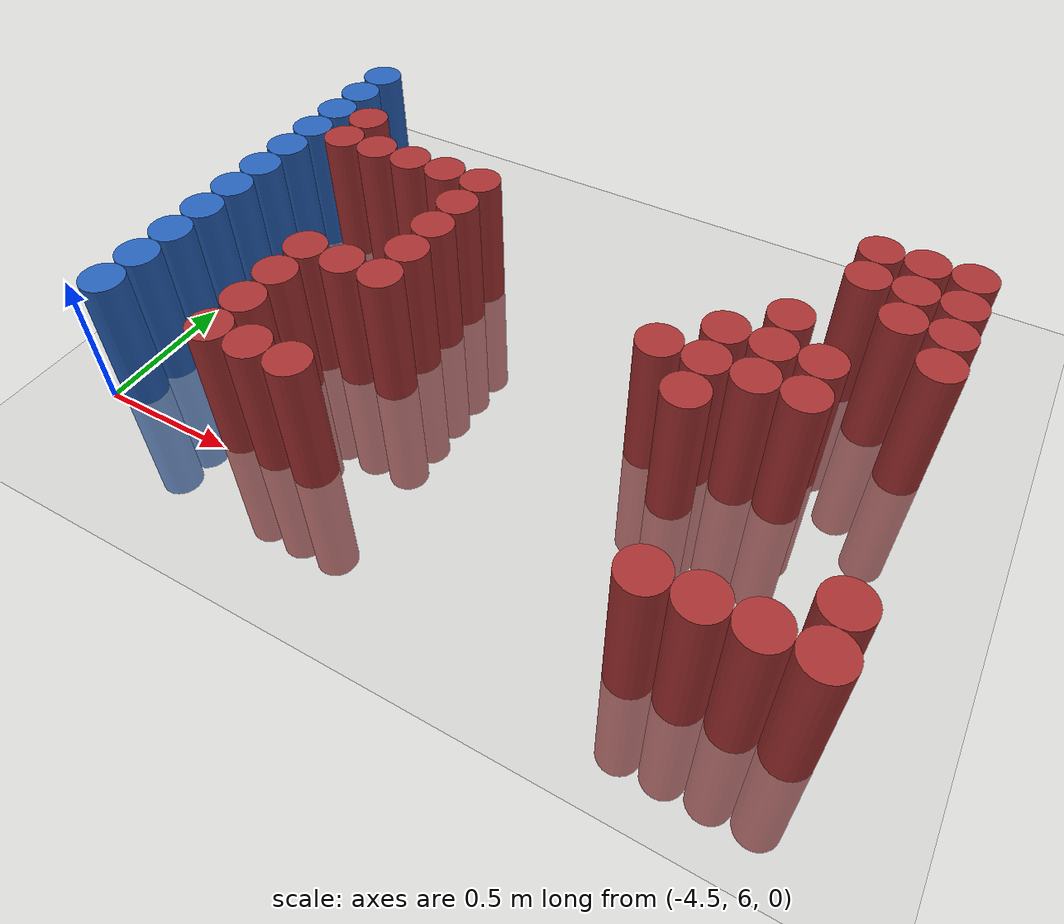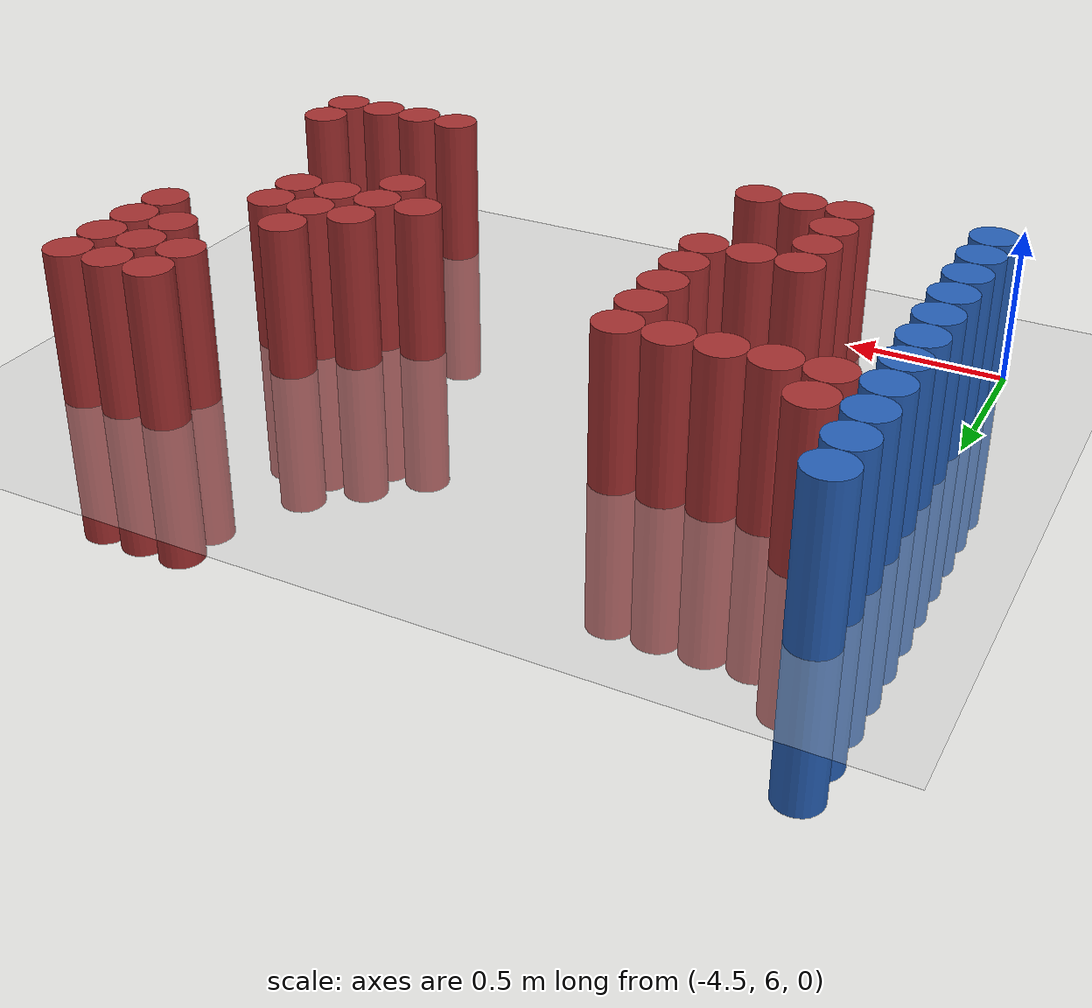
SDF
<sdf version="1.6">
 <world name="default">
  <model name="ground_plane">
   <static>1</static>
   <link name="link">
    <collision name="collision">
     <geometry><plane><normal>0 0 1</normal><size>100 100</size></plane></geometry>
     <surface><friction><ode><mu>100</mu><mu2>50</mu2></ode></friction></surface>
    </collision>
    <visual name="visual">
     <cast_shadows>0</cast_shadows>
     <geometry><plane><normal>0 0 1</normal><size>100 100</size></plane></geometry>
     <material>
      <script><uri>file://media/materials/scripts/gazebo.material</uri><name>Gazebo/Grey</name></script>
     </material>
    </visual>
   </link>
  </model>
  <model name="unit_cylinder_102">
   <static>1</static>
   <pose>-4.425000 6.075000 0.000000 0.000000 0.000000 0.000000</pose>
   <link name="link">
    <inertial>
     <mass>1</mass>
     <inertia><ixx>0.145833</ixx><ixy>0</ixy><ixz>0</ixz><iyy>0.145833</iyy><iyz>0</iyz><izz>0.125</izz></inertia>
    </inertial>
    <collision name="collision">
     <geometry><cylinder><radius>0.075000</radius><length>1</length></cylinder></geometry>
    </collision>
    <visual name="visual">
     <geometry><cylinder><radius>0.075000</radius><length>1</length></cylinder></geometry>
     <material>
      <ambient>0.152000 0.379000 0.720000 1</ambient>
      <diffuse>0.152000 0.379000 0.720000 1</diffuse>
     </material>
     <material>
      <script><name>Gazebo/Grey</name><uri>file://media/materials/scripts/gazebo.material</uri></script>
     </material>
    </visual>
   </link>
  </model>
  <model name="unit_cylinder_103">
   <static>1</static>
   <pose>-4.425000 6.225000 0.000000 0.000000 0.000000 0.000000</pose>
   <link name="link">
    <inertial>
     <mass>1</mass>
     <inertia><ixx>0.145833</ixx><ixy>0</ixy><ixz>0</ixz><iyy>0.145833</iyy><iyz>0</iyz><izz>0.125</izz></inertia>
    </inertial>
    <collision name="collision">
     <geometry><cylinder><radius>0.075000</radius><length>1</length></cylinder></geometry>
    </collision>
    <visual name="visual">
     <geometry><cylinder><radius>0.075000</radius><length>1</length></cylinder></geometry>
     <material>
      <ambient>0.152000 0.379000 0.720000 1</ambient>
      <diffuse>0.152000 0.379000 0.720000 1</diffuse>
     </material>
     <material>
      <script><name>Gazebo/Grey</name><uri>file://media/materials/scripts/gazebo.material</uri></script>
     </material>
    </visual>
   </link>
  </model>
  <model name="unit_cylinder_104">
   <static>1</static>
   <pose>-4.425000 6.375000 0.000000 0.000000 0.000000 0.000000</pose>
   <link name="link">
    <inertial>
     <mass>1</mass>
     <inertia><ixx>0.145833</ixx><ixy>0</ixy><ixz>0</ixz><iyy>0.145833</iyy><iyz>0</iyz><izz>0.125</izz></inertia>
    </inertial>
    <collision name="collision">
     <geometry><cylinder><radius>0.075000</radius><length>1</length></cylinder></geometry>
    </collision>
    <visual name="visual">
     <geometry><cylinder><radius>0.075000</radius><length>1</length></cylinder></geometry>
     <material>
      <ambient>0.152000 0.379000 0.720000 1</ambient>
      <diffuse>0.152000 0.379000 0.720000 1</diffuse>
     </material>
     <material>
      <script><name>Gazebo/Grey</name><uri>file://media/materials/scripts/gazebo.material</uri></script>
     </material>
    </visual>
   </link>
  </model>
  <model name="unit_cylinder_105">
   <static>1</static>
   <pose>-4.425000 6.525000 0.000000 0.000000 0.000000 0.000000</pose>
   <link name="link">
    <inertial>
     <mass>1</mass>
     <inertia><ixx>0.145833</ixx><ixy>0</ixy><ixz>0</ixz><iyy>0.145833</iyy><iyz>0</iyz><izz>0.125</izz></inertia>
    </inertial>
    <collision name="collision">
     <geometry><cylinder><radius>0.075000</radius><length>1</length></cylinder></geometry>
    </collision>
    <visual name="visual">
     <geometry><cylinder><radius>0.075000</radius><length>1</length></cylinder></geometry>
     <material>
      <ambient>0.152000 0.379000 0.720000 1</ambient>
      <diffuse>0.152000 0.379000 0.720000 1</diffuse>
     </material>
     <material>
      <script><name>Gazebo/Grey</name><uri>file://media/materials/scripts/gazebo.material</uri></script>
     </material>
    </visual>
   </link>
  </model>
  <model name="unit_cylinder_106">
   <static>1</static>
   <pose>-4.425000 6.675000 0.000000 0.000000 0.000000 0.000000</pose>
   <link name="link">
    <inertial>
     <mass>1</mass>
     <inertia><ixx>0.145833</ixx><ixy>0</ixy><ixz>0</ixz><iyy>0.145833</iyy><iyz>0</iyz><izz>0.125</izz></inertia>
    </inertial>
    <collision name="collision">
     <geometry><cylinder><radius>0.075000</radius><length>1</length></cylinder></geometry>
    </collision>
    <visual name="visual">
     <geometry><cylinder><radius>0.075000</radius><length>1</length></cylinder></geometry>
     <material>
      <ambient>0.152000 0.379000 0.720000 1</ambient>
      <diffuse>0.152000 0.379000 0.720000 1</diffuse>
     </material>
     <material>
      <script><name>Gazebo/Grey</name><uri>file://media/materials/scripts/gazebo.material</uri></script>
     </material>
    </visual>
   </link>
  </model>
  <model name="unit_cylinder_107">
   <static>1</static>
   <pose>-4.425000 6.825000 0.000000 0.000000 0.000000 0.000000</pose>
   <link name="link">
    <inertial>
     <mass>1</mass>
     <inertia><ixx>0.145833</ixx><ixy>0</ixy><ixz>0</ixz><iyy>0.145833</iyy><iyz>0</iyz><izz>0.125</izz></inertia>
    </inertial>
    <collision name="collision">
     <geometry><cylinder><radius>0.075000</radius><length>1</length></cylinder></geometry>
    </collision>
    <visual name="visual">
     <geometry><cylinder><radius>0.075000</radius><length>1</length></cylinder></geometry>
     <material>
      <ambient>0.152000 0.379000 0.720000 1</ambient>
      <diffuse>0.152000 0.379000 0.720000 1</diffuse>
     </material>
     <material>
      <script><name>Gazebo/Grey</name><uri>file://media/materials/scripts/gazebo.material</uri></script>
     </material>
    </visual>
   </link>
  </model>
  <model name="unit_cylinder_108">
   <static>1</static>
   <pose>-4.425000 6.975000 0.000000 0.000000 0.000000 0.000000</pose>
   <link name="link">
    <inertial>
     <mass>1</mass>
     <inertia><ixx>0.145833</ixx><ixy>0</ixy><ixz>0</ixz><iyy>0.145833</iyy><iyz>0</iyz><izz>0.125</izz></inertia>
    </inertial>
    <collision name="collision">
     <geometry><cylinder><radius>0.075000</radius><length>1</length></cylinder></geometry>
    </collision>
    <visual name="visual">
     <geometry><cylinder><radius>0.075000</radius><length>1</length></cylinder></geometry>
     <material>
      <ambient>0.152000 0.379000 0.720000 1</ambient>
      <diffuse>0.152000 0.379000 0.720000 1</diffuse>
     </material>
     <material>
      <script><name>Gazebo/Grey</name><uri>file://media/materials/scripts/gazebo.material</uri></script>
     </material>
    </visual>
   </link>
  </model>
  <model name="unit_cylinder_109">
   <static>1</static>
   <pose>-4.425000 7.125000 0.000000 0.000000 0.000000 0.000000</pose>
   <link name="link">
    <inertial>
     <mass>1</mass>
     <inertia><ixx>0.145833</ixx><ixy>0</ixy><ixz>0</ixz><iyy>0.145833</iyy><iyz>0</iyz><izz>0.125</izz></inertia>
    </inertial>
    <collision name="collision">
     <geometry><cylinder><radius>0.075000</radius><length>1</length></cylinder></geometry>
    </collision>
    <visual name="visual">
     <geometry><cylinder><radius>0.075000</radius><length>1</length></cylinder></geometry>
     <material>
      <ambient>0.152000 0.379000 0.720000 1</ambient>
      <diffuse>0.152000 0.379000 0.720000 1</diffuse>
     </material>
     <material>
      <script><name>Gazebo/Grey</name><uri>file://media/materials/scripts/gazebo.material</uri></script>
     </material>
    </visual>
   </link>
  </model>
  <model name="unit_cylinder_110">
   <static>1</static>
   <pose>-4.425000 7.275000 0.000000 0.000000 0.000000 0.000000</pose>
   <link name="link">
    <inertial>
     <mass>1</mass>
     <inertia><ixx>0.145833</ixx><ixy>0</ixy><ixz>0</ixz><iyy>0.145833</iyy><iyz>0</iyz><izz>0.125</izz></inertia>
    </inertial>
    <collision name="collision">
     <geometry><cylinder><radius>0.075000</radius><length>1</length></cylinder></geometry>
    </collision>
    <visual name="visual">
     <geometry><cylinder><radius>0.075000</radius><length>1</length></cylinder></geometry>
     <material>
      <ambient>0.152000 0.379000 0.720000 1</ambient>
      <diffuse>0.152000 0.379000 0.720000 1</diffuse>
     </material>
     <material>
      <script><name>Gazebo/Grey</name><uri>file://media/materials/scripts/gazebo.material</uri></script>
     </material>
    </visual>
   </link>
  </model>
  <model name="unit_cylinder_111">
   <static>1</static>
   <pose>-4.425000 7.425000 0.000000 0.000000 0.000000 0.000000</pose>
   <link name="link">
    <inertial>
     <mass>1</mass>
     <inertia><ixx>0.145833</ixx><ixy>0</ixy><ixz>0</ixz><iyy>0.145833</iyy><iyz>0</iyz><izz>0.125</izz></inertia>
    </inertial>
    <collision name="collision">
     <geometry><cylinder><radius>0.075000</radius><length>1</length></cylinder></geometry>
    </collision>
    <visual name="visual">
     <geometry><cylinder><radius>0.075000</radius><length>1</length></cylinder></geometry>
     <material>
      <ambient>0.152000 0.379000 0.720000 1</ambient>
      <diffuse>0.152000 0.379000 0.720000 1</diffuse>
     </material>
     <material>
      <script><name>Gazebo/Grey</name><uri>file://media/materials/scripts/gazebo.material</uri></script>
     </material>
    </visual>
   </link>
  </model>
  <model name="unit_cylinder_112">
   <static>1</static>
   <pose>-4.425000 7.575000 0.000000 0.000000 0.000000 0.000000</pose>
   <link name="link">
    <inertial>
     <mass>1</mass>
     <inertia><ixx>0.145833</ixx><ixy>0</ixy><ixz>0</ixz><iyy>0.145833</iyy><iyz>0</iyz><izz>0.125</izz></inertia>
    </inertial>
    <collision name="collision">
     <geometry><cylinder><radius>0.075000</radius><length>1</length></cylinder></geometry>
    </collision>
    <visual name="visual">
     <geometry><cylinder><radius>0.075000</radius><length>1</length></cylinder></geometry>
     <material>
      <ambient>0.152000 0.379000 0.720000 1</ambient>
      <diffuse>0.152000 0.379000 0.720000 1</diffuse>
     </material>
     <material>
      <script><name>Gazebo/Grey</name><uri>file://media/materials/scripts/gazebo.material</uri></script>
     </material>
    </visual>
   </link>
  </model>
  <model name="unit_cylinder_128">
   <static>1</static>
   <pose>-4.275000 7.125000 0.000000 0.000000 0.000000 0.000000</pose>
   <link name="link">
    <inertial>
     <mass>1</mass>
     <inertia><ixx>0.145833</ixx><ixy>0</ixy><ixz>0</ixz><iyy>0.145833</iyy><iyz>0</iyz><izz>0.125</izz></inertia>
    </inertial>
    <collision name="collision">
     <geometry><cylinder><radius>0.075000</radius><length>1</length></cylinder></geometry>
    </collision>
    <visual name="visual">
     <geometry><cylinder><radius>0.075000</radius><length>1</length></cylinder></geometry>
     <material>
      <ambient>0.648000 0.192000 0.192000 1</ambient>
      <diffuse>0.648000 0.192000 0.192000 1</diffuse>
     </material>
     <material>
      <script><name>Gazebo/Grey</name><uri>file://media/materials/scripts/gazebo.material</uri></script>
     </material>
    </visual>
   </link>
  </model>
  <model name="unit_cylinder_129">
   <static>1</static>
   <pose>-4.275000 7.275000 0.000000 0.000000 0.000000 0.000000</pose>
   <link name="link">
    <inertial>
     <mass>1</mass>
     <inertia><ixx>0.145833</ixx><ixy>0</ixy><ixz>0</ixz><iyy>0.145833</iyy><iyz>0</iyz><izz>0.125</izz></inertia>
    </inertial>
    <collision name="collision">
     <geometry><cylinder><radius>0.075000</radius><length>1</length></cylinder></geometry>
    </collision>
    <visual name="visual">
     <geometry><cylinder><radius>0.075000</radius><length>1</length></cylinder></geometry>
     <material>
      <ambient>0.648000 0.192000 0.192000 1</ambient>
      <diffuse>0.648000 0.192000 0.192000 1</diffuse>
     </material>
     <material>
      <script><name>Gazebo/Grey</name><uri>file://media/materials/scripts/gazebo.material</uri></script>
     </material>
    </visual>
   </link>
  </model>
  <model name="unit_cylinder_136">
   <static>1</static>
   <pose>-4.125000 7.125000 0.000000 0.000000 0.000000 0.000000</pose>
   <link name="link">
    <inertial>
     <mass>1</mass>
     <inertia><ixx>0.145833</ixx><ixy>0</ixy><ixz>0</ixz><iyy>0.145833</iyy><iyz>0</iyz><izz>0.125</izz></inertia>
    </inertial>
    <collision name="collision">
     <geometry><cylinder><radius>0.075000</radius><length>1</length></cylinder></geometry>
    </collision>
    <visual name="visual">
     <geometry><cylinder><radius>0.075000</radius><length>1</length></cylinder></geometry>
     <material>
      <ambient>0.648000 0.192000 0.192000 1</ambient>
      <diffuse>0.648000 0.192000 0.192000 1</diffuse>
     </material>
     <material>
      <script><name>Gazebo/Grey</name><uri>file://media/materials/scripts/gazebo.material</uri></script>
     </material>
    </visual>
   </link>
  </model>
  <model name="unit_cylinder_139">
   <static>1</static>
   <pose>-3.975000 6.075000 0.000000 0.000000 0.000000 0.000000</pose>
   <link name="link">
    <inertial>
     <mass>1</mass>
     <inertia><ixx>0.145833</ixx><ixy>0</ixy><ixz>0</ixz><iyy>0.145833</iyy><iyz>0</iyz><izz>0.125</izz></inertia>
    </inertial>
    <collision name="collision">
     <geometry><cylinder><radius>0.075000</radius><length>1</length></cylinder></geometry>
    </collision>
    <visual name="visual">
     <geometry><cylinder><radius>0.075000</radius><length>1</length></cylinder></geometry>
     <material>
      <ambient>0.648000 0.192000 0.192000 1</ambient>
      <diffuse>0.648000 0.192000 0.192000 1</diffuse>
     </material>
     <material>
      <script><name>Gazebo/Grey</name><uri>file://media/materials/scripts/gazebo.material</uri></script>
     </material>
    </visual>
   </link>
  </model>
  <model name="unit_cylinder_140">
   <static>1</static>
   <pose>-3.975000 6.225000 0.000000 0.000000 0.000000 0.000000</pose>
   <link name="link">
    <inertial>
     <mass>1</mass>
     <inertia><ixx>0.145833</ixx><ixy>0</ixy><ixz>0</ixz><iyy>0.145833</iyy><iyz>0</iyz><izz>0.125</izz></inertia>
    </inertial>
    <collision name="collision">
     <geometry><cylinder><radius>0.075000</radius><length>1</length></cylinder></geometry>
    </collision>
    <visual name="visual">
     <geometry><cylinder><radius>0.075000</radius><length>1</length></cylinder></geometry>
     <material>
      <ambient>0.648000 0.192000 0.192000 1</ambient>
      <diffuse>0.648000 0.192000 0.192000 1</diffuse>
     </material>
     <material>
      <script><name>Gazebo/Grey</name><uri>file://media/materials/scripts/gazebo.material</uri></script>
     </material>
    </visual>
   </link>
  </model>
  <model name="unit_cylinder_141">
   <static>1</static>
   <pose>-3.975000 6.375000 0.000000 0.000000 0.000000 0.000000</pose>
   <link name="link">
    <inertial>
     <mass>1</mass>
     <inertia><ixx>0.145833</ixx><ixy>0</ixy><ixz>0</ixz><iyy>0.145833</iyy><iyz>0</iyz><izz>0.125</izz></inertia>
    </inertial>
    <collision name="collision">
     <geometry><cylinder><radius>0.075000</radius><length>1</length></cylinder></geometry>
    </collision>
    <visual name="visual">
     <geometry><cylinder><radius>0.075000</radius><length>1</length></cylinder></geometry>
     <material>
      <ambient>0.648000 0.192000 0.192000 1</ambient>
      <diffuse>0.648000 0.192000 0.192000 1</diffuse>
     </material>
     <material>
      <script><name>Gazebo/Grey</name><uri>file://media/materials/scripts/gazebo.material</uri></script>
     </material>
    </visual>
   </link>
  </model>
  <model name="unit_cylinder_142">
   <static>1</static>
   <pose>-3.975000 6.525000 0.000000 0.000000 0.000000 0.000000</pose>
   <link name="link">
    <inertial>
     <mass>1</mass>
     <inertia><ixx>0.145833</ixx><ixy>0</ixy><ixz>0</ixz><iyy>0.145833</iyy><iyz>0</iyz><izz>0.125</izz></inertia>
    </inertial>
    <collision name="collision">
     <geometry><cylinder><radius>0.075000</radius><length>1</length></cylinder></geometry>
    </collision>
    <visual name="visual">
     <geometry><cylinder><radius>0.075000</radius><length>1</length></cylinder></geometry>
     <material>
      <ambient>0.648000 0.192000 0.192000 1</ambient>
      <diffuse>0.648000 0.192000 0.192000 1</diffuse>
     </material>
     <material>
      <script><name>Gazebo/Grey</name><uri>file://media/materials/scripts/gazebo.material</uri></script>
     </material>
    </visual>
   </link>
  </model>
  <model name="unit_cylinder_143">
   <static>1</static>
   <pose>-3.975000 7.125000 0.000000 0.000000 0.000000 0.000000</pose>
   <link name="link">
    <inertial>
     <mass>1</mass>
     <inertia><ixx>0.145833</ixx><ixy>0</ixy><ixz>0</ixz><iyy>0.145833</iyy><iyz>0</iyz><izz>0.125</izz></inertia>
    </inertial>
    <collision name="collision">
     <geometry><cylinder><radius>0.075000</radius><length>1</length></cylinder></geometry>
    </collision>
    <visual name="visual">
     <geometry><cylinder><radius>0.075000</radius><length>1</length></cylinder></geometry>
     <material>
      <ambient>0.648000 0.192000 0.192000 1</ambient>
      <diffuse>0.648000 0.192000 0.192000 1</diffuse>
     </material>
     <material>
      <script><name>Gazebo/Grey</name><uri>file://media/materials/scripts/gazebo.material</uri></script>
     </material>
    </visual>
   </link>
  </model>
  <model name="unit_cylinder_148">
   <static>1</static>
   <pose>-3.825000 6.075000 0.000000 0.000000 0.000000 0.000000</pose>
   <link name="link">
    <inertial>
     <mass>1</mass>
     <inertia><ixx>0.145833</ixx><ixy>0</ixy><ixz>0</ixz><iyy>0.145833</iyy><iyz>0</iyz><izz>0.125</izz></inertia>
    </inertial>
    <collision name="collision">
     <geometry><cylinder><radius>0.075000</radius><length>1</length></cylinder></geometry>
    </collision>
    <visual name="visual">
     <geometry><cylinder><radius>0.075000</radius><length>1</length></cylinder></geometry>
     <material>
      <ambient>0.648000 0.192000 0.192000 1</ambient>
      <diffuse>0.648000 0.192000 0.192000 1</diffuse>
     </material>
     <material>
      <script><name>Gazebo/Grey</name><uri>file://media/materials/scripts/gazebo.material</uri></script>
     </material>
    </visual>
   </link>
  </model>
  <model name="unit_cylinder_149">
   <static>1</static>
   <pose>-3.825000 6.525000 0.000000 0.000000 0.000000 0.000000</pose>
   <link name="link">
    <inertial>
     <mass>1</mass>
     <inertia><ixx>0.145833</ixx><ixy>0</ixy><ixz>0</ixz><iyy>0.145833</iyy><iyz>0</iyz><izz>0.125</izz></inertia>
    </inertial>
    <collision name="collision">
     <geometry><cylinder><radius>0.075000</radius><length>1</length></cylinder></geometry>
    </collision>
    <visual name="visual">
     <geometry><cylinder><radius>0.075000</radius><length>1</length></cylinder></geometry>
     <material>
      <ambient>0.648000 0.192000 0.192000 1</ambient>
      <diffuse>0.648000 0.192000 0.192000 1</diffuse>
     </material>
     <material>
      <script><name>Gazebo/Grey</name><uri>file://media/materials/scripts/gazebo.material</uri></script>
     </material>
    </visual>
   </link>
  </model>
  <model name="unit_cylinder_150">
   <static>1</static>
   <pose>-3.825000 7.125000 0.000000 0.000000 0.000000 0.000000</pose>
   <link name="link">
    <inertial>
     <mass>1</mass>
     <inertia><ixx>0.145833</ixx><ixy>0</ixy><ixz>0</ixz><iyy>0.145833</iyy><iyz>0</iyz><izz>0.125</izz></inertia>
    </inertial>
    <collision name="collision">
     <geometry><cylinder><radius>0.075000</radius><length>1</length></cylinder></geometry>
    </collision>
    <visual name="visual">
     <geometry><cylinder><radius>0.075000</radius><length>1</length></cylinder></geometry>
     <material>
      <ambient>0.648000 0.192000 0.192000 1</ambient>
      <diffuse>0.648000 0.192000 0.192000 1</diffuse>
     </material>
     <material>
      <script><name>Gazebo/Grey</name><uri>file://media/materials/scripts/gazebo.material</uri></script>
     </material>
    </visual>
   </link>
  </model>
  <model name="unit_cylinder_155">
   <static>1</static>
   <pose>-3.675000 6.075000 0.000000 0.000000 0.000000 0.000000</pose>
   <link name="link">
    <inertial>
     <mass>1</mass>
     <inertia><ixx>0.145833</ixx><ixy>0</ixy><ixz>0</ixz><iyy>0.145833</iyy><iyz>0</iyz><izz>0.125</izz></inertia>
    </inertial>
    <collision name="collision">
     <geometry><cylinder><radius>0.075000</radius><length>1</length></cylinder></geometry>
    </collision>
    <visual name="visual">
     <geometry><cylinder><radius>0.075000</radius><length>1</length></cylinder></geometry>
     <material>
      <ambient>0.648000 0.192000 0.192000 1</ambient>
      <diffuse>0.648000 0.192000 0.192000 1</diffuse>
     </material>
     <material>
      <script><name>Gazebo/Grey</name><uri>file://media/materials/scripts/gazebo.material</uri></script>
     </material>
    </visual>
   </link>
  </model>
  <model name="unit_cylinder_156">
   <static>1</static>
   <pose>-3.675000 6.525000 0.000000 0.000000 0.000000 0.000000</pose>
   <link name="link">
    <inertial>
     <mass>1</mass>
     <inertia><ixx>0.145833</ixx><ixy>0</ixy><ixz>0</ixz><iyy>0.145833</iyy><iyz>0</iyz><izz>0.125</izz></inertia>
    </inertial>
    <collision name="collision">
     <geometry><cylinder><radius>0.075000</radius><length>1</length></cylinder></geometry>
    </collision>
    <visual name="visual">
     <geometry><cylinder><radius>0.075000</radius><length>1</length></cylinder></geometry>
     <material>
      <ambient>0.648000 0.192000 0.192000 1</ambient>
      <diffuse>0.648000 0.192000 0.192000 1</diffuse>
     </material>
     <material>
      <script><name>Gazebo/Grey</name><uri>file://media/materials/scripts/gazebo.material</uri></script>
     </material>
    </visual>
   </link>
  </model>
  <model name="unit_cylinder_157">
   <static>1</static>
   <pose>-3.675000 6.675000 0.000000 0.000000 0.000000 0.000000</pose>
   <link name="link">
    <inertial>
     <mass>1</mass>
     <inertia><ixx>0.145833</ixx><ixy>0</ixy><ixz>0</ixz><iyy>0.145833</iyy><iyz>0</iyz><izz>0.125</izz></inertia>
    </inertial>
    <collision name="collision">
     <geometry><cylinder><radius>0.075000</radius><length>1</length></cylinder></geometry>
    </collision>
    <visual name="visual">
     <geometry><cylinder><radius>0.075000</radius><length>1</length></cylinder></geometry>
     <material>
      <ambient>0.648000 0.192000 0.192000 1</ambient>
      <diffuse>0.648000 0.192000 0.192000 1</diffuse>
     </material>
     <material>
      <script><name>Gazebo/Grey</name><uri>file://media/materials/scripts/gazebo.material</uri></script>
     </material>
    </visual>
   </link>
  </model>
  <model name="unit_cylinder_158">
   <static>1</static>
   <pose>-3.675000 6.825000 0.000000 0.000000 0.000000 0.000000</pose>
   <link name="link">
    <inertial>
     <mass>1</mass>
     <inertia><ixx>0.145833</ixx><ixy>0</ixy><ixz>0</ixz><iyy>0.145833</iyy><iyz>0</iyz><izz>0.125</izz></inertia>
    </inertial>
    <collision name="collision">
     <geometry><cylinder><radius>0.075000</radius><length>1</length></cylinder></geometry>
    </collision>
    <visual name="visual">
     <geometry><cylinder><radius>0.075000</radius><length>1</length></cylinder></geometry>
     <material>
      <ambient>0.648000 0.192000 0.192000 1</ambient>
      <diffuse>0.648000 0.192000 0.192000 1</diffuse>
     </material>
     <material>
      <script><name>Gazebo/Grey</name><uri>file://media/materials/scripts/gazebo.material</uri></script>
     </material>
    </visual>
   </link>
  </model>
  <model name="unit_cylinder_159">
   <static>1</static>
   <pose>-3.675000 6.975000 0.000000 0.000000 0.000000 0.000000</pose>
   <link name="link">
    <inertial>
     <mass>1</mass>
     <inertia><ixx>0.145833</ixx><ixy>0</ixy><ixz>0</ixz><iyy>0.145833</iyy><iyz>0</iyz><izz>0.125</izz></inertia>
    </inertial>
    <collision name="collision">
     <geometry><cylinder><radius>0.075000</radius><length>1</length></cylinder></geometry>
    </collision>
    <visual name="visual">
     <geometry><cylinder><radius>0.075000</radius><length>1</length></cylinder></geometry>
     <material>
      <ambient>0.648000 0.192000 0.192000 1</ambient>
      <diffuse>0.648000 0.192000 0.192000 1</diffuse>
     </material>
     <material>
      <script><name>Gazebo/Grey</name><uri>file://media/materials/scripts/gazebo.material</uri></script>
     </material>
    </visual>
   </link>
  </model>
  <model name="unit_cylinder_160">
   <static>1</static>
   <pose>-3.675000 7.125000 0.000000 0.000000 0.000000 0.000000</pose>
   <link name="link">
    <inertial>
     <mass>1</mass>
     <inertia><ixx>0.145833</ixx><ixy>0</ixy><ixz>0</ixz><iyy>0.145833</iyy><iyz>0</iyz><izz>0.125</izz></inertia>
    </inertial>
    <collision name="collision">
     <geometry><cylinder><radius>0.075000</radius><length>1</length></cylinder></geometry>
    </collision>
    <visual name="visual">
     <geometry><cylinder><radius>0.075000</radius><length>1</length></cylinder></geometry>
     <material>
      <ambient>0.648000 0.192000 0.192000 1</ambient>
      <diffuse>0.648000 0.192000 0.192000 1</diffuse>
     </material>
     <material>
      <script><name>Gazebo/Grey</name><uri>file://media/materials/scripts/gazebo.material</uri></script>
     </material>
    </visual>
   </link>
  </model>
  <model name="unit_cylinder_173">
   <static>1</static>
   <pose>-2.775000 6.675000 0.000000 0.000000 0.000000 0.000000</pose>
   <link name="link">
    <inertial>
     <mass>1</mass>
     <inertia><ixx>0.145833</ixx><ixy>0</ixy><ixz>0</ixz><iyy>0.145833</iyy><iyz>0</iyz><izz>0.125</izz></inertia>
    </inertial>
    <collision name="collision">
     <geometry><cylinder><radius>0.075000</radius><length>1</length></cylinder></geometry>
    </collision>
    <visual name="visual">
     <geometry><cylinder><radius>0.075000</radius><length>1</length></cylinder></geometry>
     <material>
      <ambient>0.648000 0.192000 0.192000 1</ambient>
      <diffuse>0.648000 0.192000 0.192000 1</diffuse>
     </material>
     <material>
      <script><name>Gazebo/Grey</name><uri>file://media/materials/scripts/gazebo.material</uri></script>
     </material>
    </visual>
   </link>
  </model>
  <model name="unit_cylinder_175">
   <static>1</static>
   <pose>-2.625000 6.525000 0.000000 0.000000 0.000000 0.000000</pose>
   <link name="link">
    <inertial>
     <mass>1</mass>
     <inertia><ixx>0.145833</ixx><ixy>0</ixy><ixz>0</ixz><iyy>0.145833</iyy><iyz>0</iyz><izz>0.125</izz></inertia>
    </inertial>
    <collision name="collision">
     <geometry><cylinder><radius>0.075000</radius><length>1</length></cylinder></geometry>
    </collision>
    <visual name="visual">
     <geometry><cylinder><radius>0.075000</radius><length>1</length></cylinder></geometry>
     <material>
      <ambient>0.648000 0.192000 0.192000 1</ambient>
      <diffuse>0.648000 0.192000 0.192000 1</diffuse>
     </material>
     <material>
      <script><name>Gazebo/Grey</name><uri>file://media/materials/scripts/gazebo.material</uri></script>
     </material>
    </visual>
   </link>
  </model>
  <model name="unit_cylinder_176">
   <static>1</static>
   <pose>-2.625000 6.675000 0.000000 0.000000 0.000000 0.000000</pose>
   <link name="link">
    <inertial>
     <mass>1</mass>
     <inertia><ixx>0.145833</ixx><ixy>0</ixy><ixz>0</ixz><iyy>0.145833</iyy><iyz>0</iyz><izz>0.125</izz></inertia>
    </inertial>
    <collision name="collision">
     <geometry><cylinder><radius>0.075000</radius><length>1</length></cylinder></geometry>
    </collision>
    <visual name="visual">
     <geometry><cylinder><radius>0.075000</radius><length>1</length></cylinder></geometry>
     <material>
      <ambient>0.648000 0.192000 0.192000 1</ambient>
      <diffuse>0.648000 0.192000 0.192000 1</diffuse>
     </material>
     <material>
      <script><name>Gazebo/Grey</name><uri>file://media/materials/scripts/gazebo.material</uri></script>
     </material>
    </visual>
   </link>
  </model>
  <model name="unit_cylinder_177">
   <static>1</static>
   <pose>-2.625000 6.825000 0.000000 0.000000 0.000000 0.000000</pose>
   <link name="link">
    <inertial>
     <mass>1</mass>
     <inertia><ixx>0.145833</ixx><ixy>0</ixy><ixz>0</ixz><iyy>0.145833</iyy><iyz>0</iyz><izz>0.125</izz></inertia>
    </inertial>
    <collision name="collision">
     <geometry><cylinder><radius>0.075000</radius><length>1</length></cylinder></geometry>
    </collision>
    <visual name="visual">
     <geometry><cylinder><radius>0.075000</radius><length>1</length></cylinder></geometry>
     <material>
      <ambient>0.648000 0.192000 0.192000 1</ambient>
      <diffuse>0.648000 0.192000 0.192000 1</diffuse>
     </material>
     <material>
      <script><name>Gazebo/Grey</name><uri>file://media/materials/scripts/gazebo.material</uri></script>
     </material>
    </visual>
   </link>
  </model>
  <model name="unit_cylinder_181">
   <static>1</static>
   <pose>-2.475000 5.925000 0.000000 0.000000 0.000000 0.000000</pose>
   <link name="link">
    <inertial>
     <mass>1</mass>
     <inertia><ixx>0.145833</ixx><ixy>0</ixy><ixz>0</ixz><iyy>0.145833</iyy><iyz>0</iyz><izz>0.125</izz></inertia>
    </inertial>
    <collision name="collision">
     <geometry><cylinder><radius>0.075000</radius><length>1</length></cylinder></geometry>
    </collision>
    <visual name="visual">
     <geometry><cylinder><radius>0.075000</radius><length>1</length></cylinder></geometry>
     <material>
      <ambient>0.648000 0.192000 0.192000 1</ambient>
      <diffuse>0.648000 0.192000 0.192000 1</diffuse>
     </material>
     <material>
      <script><name>Gazebo/Grey</name><uri>file://media/materials/scripts/gazebo.material</uri></script>
     </material>
    </visual>
   </link>
  </model>
  <model name="unit_cylinder_182">
   <static>1</static>
   <pose>-2.475000 6.675000 0.000000 0.000000 0.000000 0.000000</pose>
   <link name="link">
    <inertial>
     <mass>1</mass>
     <inertia><ixx>0.145833</ixx><ixy>0</ixy><ixz>0</ixz><iyy>0.145833</iyy><iyz>0</iyz><izz>0.125</izz></inertia>
    </inertial>
    <collision name="collision">
     <geometry><cylinder><radius>0.075000</radius><length>1</length></cylinder></geometry>
    </collision>
    <visual name="visual">
     <geometry><cylinder><radius>0.075000</radius><length>1</length></cylinder></geometry>
     <material>
      <ambient>0.648000 0.192000 0.192000 1</ambient>
      <diffuse>0.648000 0.192000 0.192000 1</diffuse>
     </material>
     <material>
      <script><name>Gazebo/Grey</name><uri>file://media/materials/scripts/gazebo.material</uri></script>
     </material>
    </visual>
   </link>
  </model>
  <model name="unit_cylinder_183">
   <static>1</static>
   <pose>-2.475000 6.825000 0.000000 0.000000 0.000000 0.000000</pose>
   <link name="link">
    <inertial>
     <mass>1</mass>
     <inertia><ixx>0.145833</ixx><ixy>0</ixy><ixz>0</ixz><iyy>0.145833</iyy><iyz>0</iyz><izz>0.125</izz></inertia>
    </inertial>
    <collision name="collision">
     <geometry><cylinder><radius>0.075000</radius><length>1</length></cylinder></geometry>
    </collision>
    <visual name="visual">
     <geometry><cylinder><radius>0.075000</radius><length>1</length></cylinder></geometry>
     <material>
      <ambient>0.648000 0.192000 0.192000 1</ambient>
      <diffuse>0.648000 0.192000 0.192000 1</diffuse>
     </material>
     <material>
      <script><name>Gazebo/Grey</name><uri>file://media/materials/scripts/gazebo.material</uri></script>
     </material>
    </visual>
   </link>
  </model>
  <model name="unit_cylinder_184">
   <static>1</static>
   <pose>-2.475000 6.975000 0.000000 0.000000 0.000000 0.000000</pose>
   <link name="link">
    <inertial>
     <mass>1</mass>
     <inertia><ixx>0.145833</ixx><ixy>0</ixy><ixz>0</ixz><iyy>0.145833</iyy><iyz>0</iyz><izz>0.125</izz></inertia>
    </inertial>
    <collision name="collision">
     <geometry><cylinder><radius>0.075000</radius><length>1</length></cylinder></geometry>
    </collision>
    <visual name="visual">
     <geometry><cylinder><radius>0.075000</radius><length>1</length></cylinder></geometry>
     <material>
      <ambient>0.648000 0.192000 0.192000 1</ambient>
      <diffuse>0.648000 0.192000 0.192000 1</diffuse>
     </material>
     <material>
      <script><name>Gazebo/Grey</name><uri>file://media/materials/scripts/gazebo.material</uri></script>
     </material>
    </visual>
   </link>
  </model>
  <model name="unit_cylinder_191">
   <static>1</static>
   <pose>-2.325000 5.925000 0.000000 0.000000 0.000000 0.000000</pose>
   <link name="link">
    <inertial>
     <mass>1</mass>
     <inertia><ixx>0.145833</ixx><ixy>0</ixy><ixz>0</ixz><iyy>0.145833</iyy><iyz>0</iyz><izz>0.125</izz></inertia>
    </inertial>
    <collision name="collision">
     <geometry><cylinder><radius>0.075000</radius><length>1</length></cylinder></geometry>
    </collision>
    <visual name="visual">
     <geometry><cylinder><radius>0.075000</radius><length>1</length></cylinder></geometry>
     <material>
      <ambient>0.648000 0.192000 0.192000 1</ambient>
      <diffuse>0.648000 0.192000 0.192000 1</diffuse>
     </material>
     <material>
      <script><name>Gazebo/Grey</name><uri>file://media/materials/scripts/gazebo.material</uri></script>
     </material>
    </visual>
   </link>
  </model>
  <model name="unit_cylinder_192">
   <static>1</static>
   <pose>-2.325000 6.675000 0.000000 0.000000 0.000000 0.000000</pose>
   <link name="link">
    <inertial>
     <mass>1</mass>
     <inertia><ixx>0.145833</ixx><ixy>0</ixy><ixz>0</ixz><iyy>0.145833</iyy><iyz>0</iyz><izz>0.125</izz></inertia>
    </inertial>
    <collision name="collision">
     <geometry><cylinder><radius>0.075000</radius><length>1</length></cylinder></geometry>
    </collision>
    <visual name="visual">
     <geometry><cylinder><radius>0.075000</radius><length>1</length></cylinder></geometry>
     <material>
      <ambient>0.648000 0.192000 0.192000 1</ambient>
      <diffuse>0.648000 0.192000 0.192000 1</diffuse>
     </material>
     <material>
      <script><name>Gazebo/Grey</name><uri>file://media/materials/scripts/gazebo.material</uri></script>
     </material>
    </visual>
   </link>
  </model>
  <model name="unit_cylinder_193">
   <static>1</static>
   <pose>-2.325000 6.825000 0.000000 0.000000 0.000000 0.000000</pose>
   <link name="link">
    <inertial>
     <mass>1</mass>
     <inertia><ixx>0.145833</ixx><ixy>0</ixy><ixz>0</ixz><iyy>0.145833</iyy><iyz>0</iyz><izz>0.125</izz></inertia>
    </inertial>
    <collision name="collision">
     <geometry><cylinder><radius>0.075000</radius><length>1</length></cylinder></geometry>
    </collision>
    <visual name="visual">
     <geometry><cylinder><radius>0.075000</radius><length>1</length></cylinder></geometry>
     <material>
      <ambient>0.648000 0.192000 0.192000 1</ambient>
      <diffuse>0.648000 0.192000 0.192000 1</diffuse>
     </material>
     <material>
      <script><name>Gazebo/Grey</name><uri>file://media/materials/scripts/gazebo.material</uri></script>
     </material>
    </visual>
   </link>
  </model>
  <model name="unit_cylinder_194">
   <static>1</static>
   <pose>-2.325000 7.275000 0.000000 0.000000 0.000000 0.000000</pose>
   <link name="link">
    <inertial>
     <mass>1</mass>
     <inertia><ixx>0.145833</ixx><ixy>0</ixy><ixz>0</ixz><iyy>0.145833</iyy><iyz>0</iyz><izz>0.125</izz></inertia>
    </inertial>
    <collision name="collision">
     <geometry><cylinder><radius>0.075000</radius><length>1</length></cylinder></geometry>
    </collision>
    <visual name="visual">
     <geometry><cylinder><radius>0.075000</radius><length>1</length></cylinder></geometry>
     <material>
      <ambient>0.648000 0.192000 0.192000 1</ambient>
      <diffuse>0.648000 0.192000 0.192000 1</diffuse>
     </material>
     <material>
      <script><name>Gazebo/Grey</name><uri>file://media/materials/scripts/gazebo.material</uri></script>
     </material>
    </visual>
   </link>
  </model>
  <model name="unit_cylinder_195">
   <static>1</static>
   <pose>-2.325000 7.425000 0.000000 0.000000 0.000000 0.000000</pose>
   <link name="link">
    <inertial>
     <mass>1</mass>
     <inertia><ixx>0.145833</ixx><ixy>0</ixy><ixz>0</ixz><iyy>0.145833</iyy><iyz>0</iyz><izz>0.125</izz></inertia>
    </inertial>
    <collision name="collision">
     <geometry><cylinder><radius>0.075000</radius><length>1</length></cylinder></geometry>
    </collision>
    <visual name="visual">
     <geometry><cylinder><radius>0.075000</radius><length>1</length></cylinder></geometry>
     <material>
      <ambient>0.648000 0.192000 0.192000 1</ambient>
      <diffuse>0.648000 0.192000 0.192000 1</diffuse>
     </material>
     <material>
      <script><name>Gazebo/Grey</name><uri>file://media/materials/scripts/gazebo.material</uri></script>
     </material>
    </visual>
   </link>
  </model>
  <model name="unit_cylinder_203">
   <static>1</static>
   <pose>-2.175000 5.925000 0.000000 0.000000 0.000000 0.000000</pose>
   <link name="link">
    <inertial>
     <mass>1</mass>
     <inertia><ixx>0.145833</ixx><ixy>0</ixy><ixz>0</ixz><iyy>0.145833</iyy><iyz>0</iyz><izz>0.125</izz></inertia>
    </inertial>
    <collision name="collision">
     <geometry><cylinder><radius>0.075000</radius><length>1</length></cylinder></geometry>
    </collision>
    <visual name="visual">
     <geometry><cylinder><radius>0.075000</radius><length>1</length></cylinder></geometry>
     <material>
      <ambient>0.648000 0.192000 0.192000 1</ambient>
      <diffuse>0.648000 0.192000 0.192000 1</diffuse>
     </material>
     <material>
      <script><name>Gazebo/Grey</name><uri>file://media/materials/scripts/gazebo.material</uri></script>
     </material>
    </visual>
   </link>
  </model>
  <model name="unit_cylinder_204">
   <static>1</static>
   <pose>-2.175000 7.125000 0.000000 0.000000 0.000000 0.000000</pose>
   <link name="link">
    <inertial>
     <mass>1</mass>
     <inertia><ixx>0.145833</ixx><ixy>0</ixy><ixz>0</ixz><iyy>0.145833</iyy><iyz>0</iyz><izz>0.125</izz></inertia>
    </inertial>
    <collision name="collision">
     <geometry><cylinder><radius>0.075000</radius><length>1</length></cylinder></geometry>
    </collision>
    <visual name="visual">
     <geometry><cylinder><radius>0.075000</radius><length>1</length></cylinder></geometry>
     <material>
      <ambient>0.648000 0.192000 0.192000 1</ambient>
      <diffuse>0.648000 0.192000 0.192000 1</diffuse>
     </material>
     <material>
      <script><name>Gazebo/Grey</name><uri>file://media/materials/scripts/gazebo.material</uri></script>
     </material>
    </visual>
   </link>
  </model>
  <model name="unit_cylinder_205">
   <static>1</static>
   <pose>-2.175000 7.275000 0.000000 0.000000 0.000000 0.000000</pose>
   <link name="link">
    <inertial>
     <mass>1</mass>
     <inertia><ixx>0.145833</ixx><ixy>0</ixy><ixz>0</ixz><iyy>0.145833</iyy><iyz>0</iyz><izz>0.125</izz></inertia>
    </inertial>
    <collision name="collision">
     <geometry><cylinder><radius>0.075000</radius><length>1</length></cylinder></geometry>
    </collision>
    <visual name="visual">
     <geometry><cylinder><radius>0.075000</radius><length>1</length></cylinder></geometry>
     <material>
      <ambient>0.648000 0.192000 0.192000 1</ambient>
      <diffuse>0.648000 0.192000 0.192000 1</diffuse>
     </material>
     <material>
      <script><name>Gazebo/Grey</name><uri>file://media/materials/scripts/gazebo.material</uri></script>
     </material>
    </visual>
   </link>
  </model>
  <model name="unit_cylinder_206">
   <static>1</static>
   <pose>-2.175000 7.425000 0.000000 0.000000 0.000000 0.000000</pose>
   <link name="link">
    <inertial>
     <mass>1</mass>
     <inertia><ixx>0.145833</ixx><ixy>0</ixy><ixz>0</ixz><iyy>0.145833</iyy><iyz>0</iyz><izz>0.125</izz></inertia>
    </inertial>
    <collision name="collision">
     <geometry><cylinder><radius>0.075000</radius><length>1</length></cylinder></geometry>
    </collision>
    <visual name="visual">
     <geometry><cylinder><radius>0.075000</radius><length>1</length></cylinder></geometry>
     <material>
      <ambient>0.648000 0.192000 0.192000 1</ambient>
      <diffuse>0.648000 0.192000 0.192000 1</diffuse>
     </material>
     <material>
      <script><name>Gazebo/Grey</name><uri>file://media/materials/scripts/gazebo.material</uri></script>
     </material>
    </visual>
   </link>
  </model>
  <model name="unit_cylinder_217">
   <static>1</static>
   <pose>-2.025000 5.925000 0.000000 0.000000 0.000000 0.000000</pose>
   <link name="link">
    <inertial>
     <mass>1</mass>
     <inertia><ixx>0.145833</ixx><ixy>0</ixy><ixz>0</ixz><iyy>0.145833</iyy><iyz>0</iyz><izz>0.125</izz></inertia>
    </inertial>
    <collision name="collision">
     <geometry><cylinder><radius>0.075000</radius><length>1</length></cylinder></geometry>
    </collision>
    <visual name="visual">
     <geometry><cylinder><radius>0.075000</radius><length>1</length></cylinder></geometry>
     <material>
      <ambient>0.648000 0.192000 0.192000 1</ambient>
      <diffuse>0.648000 0.192000 0.192000 1</diffuse>
     </material>
     <material>
      <script><name>Gazebo/Grey</name><uri>file://media/materials/scripts/gazebo.material</uri></script>
     </material>
    </visual>
   </link>
  </model>
  <model name="unit_cylinder_218">
   <static>1</static>
   <pose>-2.025000 6.075000 0.000000 0.000000 0.000000 0.000000</pose>
   <link name="link">
    <inertial>
     <mass>1</mass>
     <inertia><ixx>0.145833</ixx><ixy>0</ixy><ixz>0</ixz><iyy>0.145833</iyy><iyz>0</iyz><izz>0.125</izz></inertia>
    </inertial>
    <collision name="collision">
     <geometry><cylinder><radius>0.075000</radius><length>1</length></cylinder></geometry>
    </collision>
    <visual name="visual">
     <geometry><cylinder><radius>0.075000</radius><length>1</length></cylinder></geometry>
     <material>
      <ambient>0.648000 0.192000 0.192000 1</ambient>
      <diffuse>0.648000 0.192000 0.192000 1</diffuse>
     </material>
     <material>
      <script><name>Gazebo/Grey</name><uri>file://media/materials/scripts/gazebo.material</uri></script>
     </material>
    </visual>
   </link>
  </model>
  <model name="unit_cylinder_219">
   <static>1</static>
   <pose>-2.025000 6.975000 0.000000 0.000000 0.000000 0.000000</pose>
   <link name="link">
    <inertial>
     <mass>1</mass>
     <inertia><ixx>0.145833</ixx><ixy>0</ixy><ixz>0</ixz><iyy>0.145833</iyy><iyz>0</iyz><izz>0.125</izz></inertia>
    </inertial>
    <collision name="collision">
     <geometry><cylinder><radius>0.075000</radius><length>1</length></cylinder></geometry>
    </collision>
    <visual name="visual">
     <geometry><cylinder><radius>0.075000</radius><length>1</length></cylinder></geometry>
     <material>
      <ambient>0.648000 0.192000 0.192000 1</ambient>
      <diffuse>0.648000 0.192000 0.192000 1</diffuse>
     </material>
     <material>
      <script><name>Gazebo/Grey</name><uri>file://media/materials/scripts/gazebo.material</uri></script>
     </material>
    </visual>
   </link>
  </model>
  <model name="unit_cylinder_220">
   <static>1</static>
   <pose>-2.025000 7.125000 0.000000 0.000000 0.000000 0.000000</pose>
   <link name="link">
    <inertial>
     <mass>1</mass>
     <inertia><ixx>0.145833</ixx><ixy>0</ixy><ixz>0</ixz><iyy>0.145833</iyy><iyz>0</iyz><izz>0.125</izz></inertia>
    </inertial>
    <collision name="collision">
     <geometry><cylinder><radius>0.075000</radius><length>1</length></cylinder></geometry>
    </collision>
    <visual name="visual">
     <geometry><cylinder><radius>0.075000</radius><length>1</length></cylinder></geometry>
     <material>
      <ambient>0.648000 0.192000 0.192000 1</ambient>
      <diffuse>0.648000 0.192000 0.192000 1</diffuse>
     </material>
     <material>
      <script><name>Gazebo/Grey</name><uri>file://media/materials/scripts/gazebo.material</uri></script>
     </material>
    </visual>
   </link>
  </model>
  <model name="unit_cylinder_221">
   <static>1</static>
   <pose>-2.025000 7.275000 0.000000 0.000000 0.000000 0.000000</pose>
   <link name="link">
    <inertial>
     <mass>1</mass>
     <inertia><ixx>0.145833</ixx><ixy>0</ixy><ixz>0</ixz><iyy>0.145833</iyy><iyz>0</iyz><izz>0.125</izz></inertia>
    </inertial>
    <collision name="collision">
     <geometry><cylinder><radius>0.075000</radius><length>1</length></cylinder></geometry>
    </collision>
    <visual name="visual">
     <geometry><cylinder><radius>0.075000</radius><length>1</length></cylinder></geometry>
     <material>
      <ambient>0.648000 0.192000 0.192000 1</ambient>
      <diffuse>0.648000 0.192000 0.192000 1</diffuse>
     </material>
     <material>
      <script><name>Gazebo/Grey</name><uri>file://media/materials/scripts/gazebo.material</uri></script>
     </material>
    </visual>
   </link>
  </model>
  <model name="unit_cylinder_222">
   <static>1</static>
   <pose>-2.025000 7.425000 0.000000 0.000000 0.000000 0.000000</pose>
   <link name="link">
    <inertial>
     <mass>1</mass>
     <inertia><ixx>0.145833</ixx><ixy>0</ixy><ixz>0</ixz><iyy>0.145833</iyy><iyz>0</iyz><izz>0.125</izz></inertia>
    </inertial>
    <collision name="collision">
     <geometry><cylinder><radius>0.075000</radius><length>1</length></cylinder></geometry>
    </collision>
    <visual name="visual">
     <geometry><cylinder><radius>0.075000</radius><length>1</length></cylinder></geometry>
     <material>
      <ambient>0.648000 0.192000 0.192000 1</ambient>
      <diffuse>0.648000 0.192000 0.192000 1</diffuse>
     </material>
     <material>
      <script><name>Gazebo/Grey</name><uri>file://media/materials/scripts/gazebo.material</uri></script>
     </material>
    </visual>
   </link>
  </model>
 </world>
</sdf>
